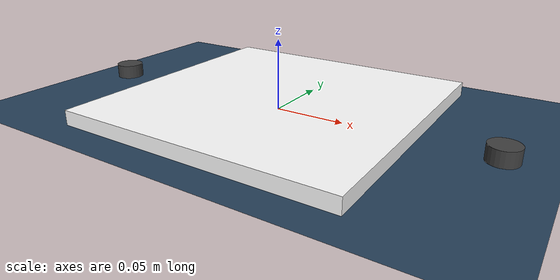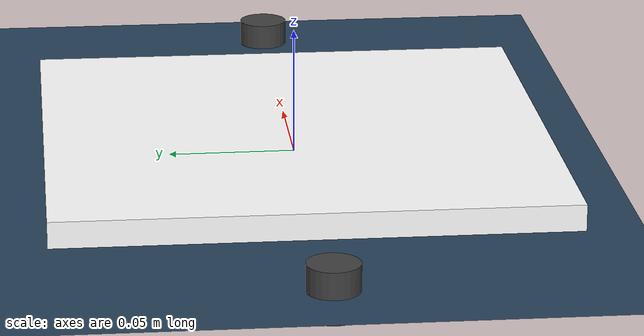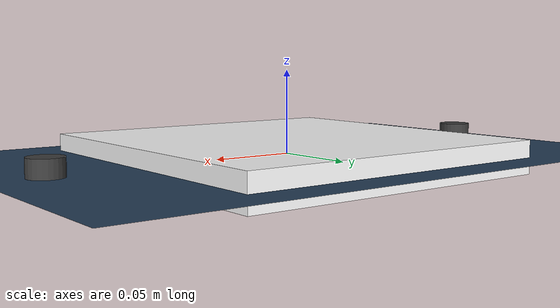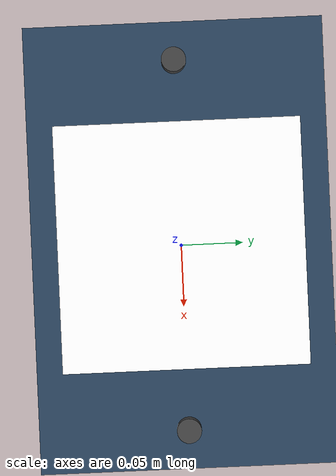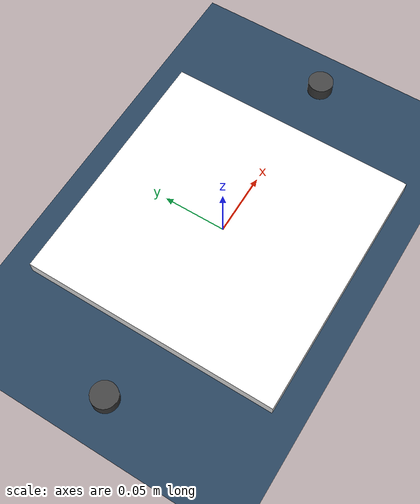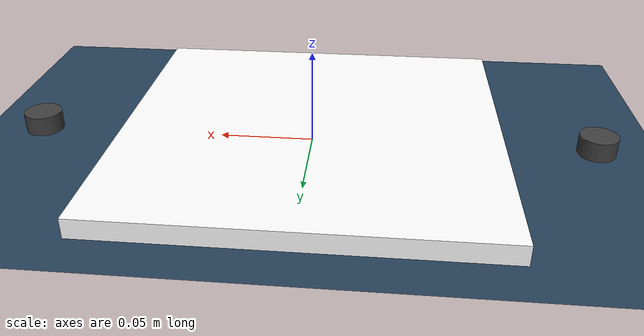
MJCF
<mujoco model="dexterous manipulation 2d">
  <compiler angle="radian" meshdir="assets" autolimits="true" />

  <option integrator="implicitfast" impratio="10" />

  <include file="scene_only.xml" />

  <asset>
    <material name="white" rgba="1 1 1 1" />
    <material name="off_white" rgba="0.901961 0.921569 0.929412 1" />
    <material name="dark_grey" rgba="0.25 0.25 0.25 1" />
    <material name="green" rgba="0 1 0 1" />
    <material name="light_blue" rgba="0.039216 0.541176 0.780392 1" />

  </asset>

  <worldbody>
    <light name="top" pos="0 0 2" mode="trackcom" />

    <!-- manipuland -->
    <body name="box_base" pos="0.0 0.0 0.0" quat="1 0 0 0">
      <body name="box_ghost_x" pos="0.0 0.0 0.0" quat="1 0 0 0">
        <joint name="box_ghost_joint_x" type="slide" axis="1 0 0" />
        <inertial mass="1e-10" pos="0.0 0.0 0.0" fullinertia="1e-12 1e-12 1e-12 0 0 0" />
        <body name="box_ghost_y" pos="0.0 0.0 0.0" quat="1 0 0 0">
          <joint name="box_ghost_joint_y" type="slide" axis="0 1 0" />
          <inertial mass="1e-10" pos="0.0 0.0 0.0" fullinertia="1e-12 1e-12 1e-12 0 0 0" />
          <body name="box" pos="0.0 0.0 0.0" quat="1 0 0 0">
            <joint name="box_ghost_joint_z" type="hinge" axis="0 0 1" />
            <inertial mass="1.0" pos="0.0 0.0 0.0" fullinertia="1e-4 1e-4 1e-4 0 0 0" />
            <geom name="box_visual" type="box" size="0.1 0.1 0.01" material="white" contype="0" conaffinity="0" group="2" />
            <geom name="box_collision" type="box" size="0.1 0.1 0.01" group="3" margin="0.1" gap="0.1" />
          </body>
        </body>
      </body>
    </body>

    <!-- manipulators -->
    <body name="hand_base_0" pos="0.15 0.0 0.0" quat="1 0 0 0">
      <body name="hand_ghost_x_0" pos="0.0 0.0 0.0" quat="1 0 0 0">
        <joint name="hand_ghost_joint_x_0" type="slide" axis="1 0 0" />
        <inertial mass="1e-10" pos="0.0 0.0 0.0" fullinertia="1e-12 1e-12 1e-12 0 0 0" />
        <body name="hand_0" pos="0.0 0.0 0.0" quat="1 0 0 0">
          <joint name="hand_ghost_joint_y_0" type="slide" axis="0 1 0" />
          <inertial mass="0.1" pos="0.0 0.0 0.0" fullinertia="1e-4 1e-4 1e-4 0 0 0" />
          <geom name="hand_visual_0" type="cylinder" size="0.01 0.01" material="dark_grey" contype="0" conaffinity="0" group="2" />
          <geom name="hand_collision_0" type="cylinder" size="0.01 0.01" group="3" />
        </body>
      </body>
    </body>

    <body name="hand_base_1" pos="-0.15 0.0 0.0" quat="1 0 0 0">
      <body name="hand_ghost_x_1" pos="0.0 0.0 0.0" quat="1 0 0 0">
        <joint name="hand_ghost_joint_x_1" type="slide" axis="1 0 0" />
        <inertial mass="1e-10" pos="0.0 0.0 0.0" fullinertia="1e-12 1e-12 1e-12 0 0 0" />
        <body name="hand_1" pos="0.0 0.0 0.0" quat="1 0 0 0">
          <joint name="hand_ghost_joint_y_1" type="slide" axis="0 1 0" />
          <inertial mass="0.1" pos="0.0 0.0 0.0" fullinertia="1e-4 1e-4 1e-4 0 0 0" />
          <geom name="hand_visual_1" type="cylinder" size="0.01 0.01" material="dark_grey" contype="0" conaffinity="0" group="2" />
          <geom name="hand_collision_1" type="cylinder" size="0.01 0.01" group="3" />
        </body>
      </body>
    </body>

  </worldbody>

</mujoco>

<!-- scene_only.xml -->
<mujoco model="panda scene">
  <statistic center="0.3 0 0.4" extent="1"/>

  <visual>
    <headlight diffuse="0.6 0.6 0.6" ambient="0.3 0.3 0.3" specular="0 0 0"/>
    <rgba haze="0.15 0.25 0.35 1"/>
    <global azimuth="120" elevation="-20"/>
  </visual>

  <asset>
    <texture type="skybox" builtin="gradient" rgb1="0.3 0.5 0.7" rgb2="0 0 0" width="512" height="3072"/>
    <texture type="2d" name="groundplane" builtin="checker" mark="edge" rgb1="0.2 0.3 0.4" rgb2="0.1 0.2 0.3"
      markrgb="0.8 0.8 0.8" width="300" height="300"/>
    <material name="groundplane" texture="groundplane" texuniform="true" texrepeat="5 5" reflectance="0.2"/>
  </asset>

  <worldbody>
    <light pos="0 0 1.5" dir="0 0 -1" directional="true"/>
    <geom name="floor" size="0 0 0.05" type="plane" material="groundplane"/>
  </worldbody>
</mujoco>
